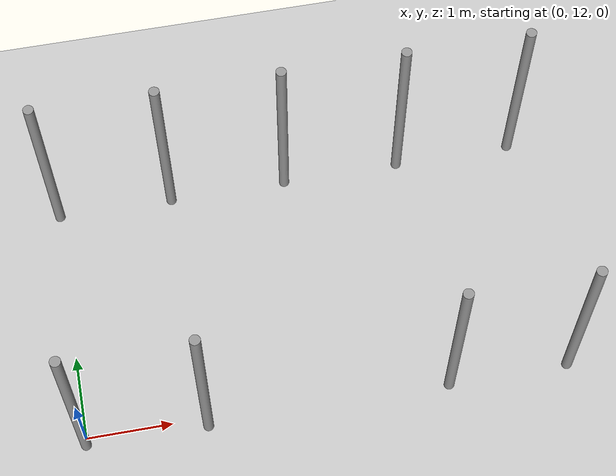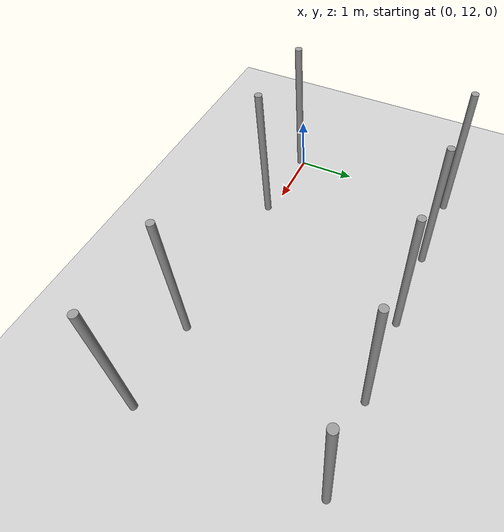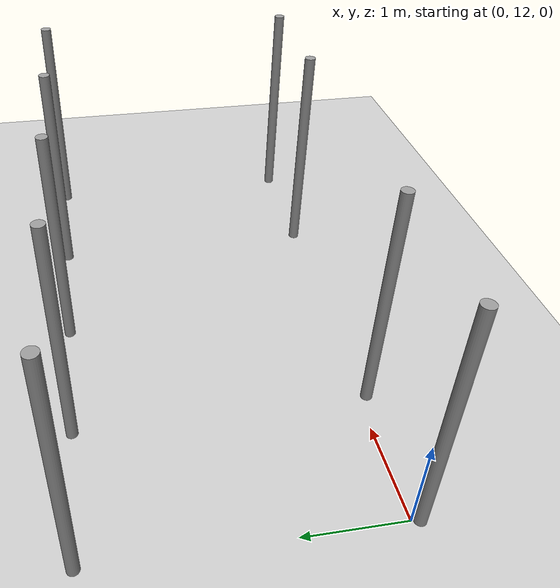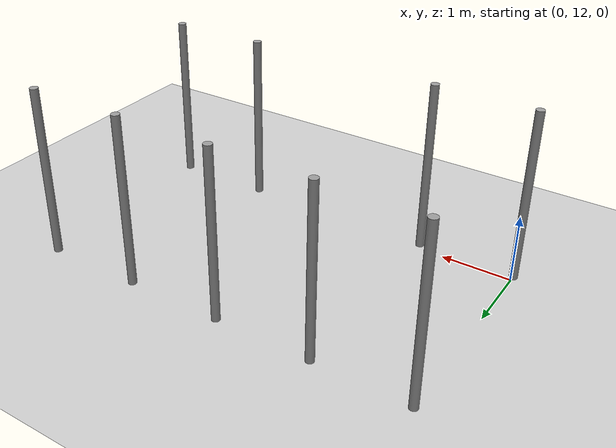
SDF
<sdf version="1.6">
 <world name="default">
  <model name="ground_plane">
   <static>1</static>
   <link name="link">
    <collision name="collision">
     <geometry><plane><normal>0 0 1</normal><size>100 100</size></plane></geometry>
     <surface><friction><ode><mu>100</mu><mu2>50</mu2></ode></friction></surface>
    </collision>
    <visual name="visual">
     <cast_shadows>0</cast_shadows>
     <geometry><plane><normal>0 0 1</normal><size>100 100</size></plane></geometry>
     <material>
      <script><uri>file://media/materials/scripts/gazebo.material</uri><name>Gazebo/Grey</name></script>
     </material>
    </visual>
   </link>
  </model>
  <model name="pole_1">
   <link name="link_0">
    <inertial>
     <mass>0.0364582</mass>
     <inertia>
      <ixx>0.00312124</ixx>
      <ixy>0</ixy>
      <ixz>0</ixz>
      <iyy>0.00312124</iyy>
      <iyz>0</iyz>
      <izz>0.00016615</izz>
     </inertia>
    </inertial>
    <visual name="visual">
     <geometry><cylinder><radius>0.06</radius><length>2.5</length></cylinder></geometry>
     <material>
      <lighting>1</lighting>
      <script><uri>file://media/materials/scripts/gazebo.material</uri><name>Gazebo/Grey</name></script>
      <ambient>0.3 0.3 0.3 1</ambient>
      <diffuse>0.7 0.7 0.7 1</diffuse>
      <specular>0.01 0.01 0.01 1</specular>
      <emissive>0 0 0 1</emissive>
      <shader type="vertex"><normal_map>__default__</normal_map></shader>
     </material>
    </visual>
    <collision name="collision">
     <geometry><cylinder><radius>0.06</radius><length>2.5</length></cylinder></geometry>
     <surface>
      <friction>
       <ode><mu>1</mu><mu2>1</mu2><fdir1>0 0 0</fdir1><slip1>0</slip1><slip2>0</slip2></ode>
       <torsional>
        <coefficient>1</coefficient>
        <patch_radius>0</patch_radius>
        <surface_radius>0</surface_radius>
        <use_patch_radius>1</use_patch_radius>
        <ode><slip>0</slip></ode>
       </torsional>
      </friction>
      <bounce><restitution_coefficient>0</restitution_coefficient><threshold>1e+06</threshold></bounce>
      <contact>
       <collide_without_contact>0</collide_without_contact>
       <collide_without_contact_bitmask>1</collide_without_contact_bitmask>
       <collide_bitmask>1</collide_bitmask>
       <ode>
        <soft_cfm>0</soft_cfm>
        <soft_erp>0.2</soft_erp>
        <kp>1e+13</kp>
        <kd>1</kd>
        <max_vel>0.01</max_vel>
        <min_depth>0</min_depth>
       </ode>
       <bullet>
        <split_impulse>1</split_impulse>
        <split_impulse_penetration_threshold>-0.01</split_impulse_penetration_threshold>
        <soft_cfm>0</soft_cfm>
        <soft_erp>0.2</soft_erp>
        <kp>1e+13</kp>
        <kd>1</kd>
       </bullet>
      </contact>
     </surface>
    </collision>
   </link>
   <static>0</static>
   <pose>-0.00812 11.9213 1.25 -1e-06 1e-06 -0.01754</pose>
  </model>
  <model name="pole_2">
   <link name="link_0">
    <inertial>
     <mass>0.0364582</mass>
     <inertia>
      <ixx>0.00312124</ixx>
      <ixy>0</ixy>
      <ixz>0</ixz>
      <iyy>0.00312124</iyy>
      <iyz>0</iyz>
      <izz>0.00016615</izz>
     </inertia>
    </inertial>
    <visual name="visual">
     <geometry><cylinder><radius>0.06</radius><length>2.5</length></cylinder></geometry>
     <material>
      <lighting>1</lighting>
      <script><uri>file://media/materials/scripts/gazebo.material</uri><name>Gazebo/Grey</name></script>
      <ambient>0.3 0.3 0.3 1</ambient>
      <diffuse>0.7 0.7 0.7 1</diffuse>
      <specular>0.01 0.01 0.01 1</specular>
      <emissive>0 0 0 1</emissive>
      <shader type="vertex"><normal_map>__default__</normal_map></shader>
     </material>
    </visual>
    <collision name="collision">
     <geometry><cylinder><radius>0.06</radius><length>2.5</length></cylinder></geometry>
     <surface>
      <friction>
       <ode><mu>1</mu><mu2>1</mu2><fdir1>0 0 0</fdir1><slip1>0</slip1><slip2>0</slip2></ode>
       <torsional>
        <coefficient>1</coefficient>
        <patch_radius>0</patch_radius>
        <surface_radius>0</surface_radius>
        <use_patch_radius>1</use_patch_radius>
        <ode><slip>0</slip></ode>
       </torsional>
      </friction>
      <bounce><restitution_coefficient>0</restitution_coefficient><threshold>1e+06</threshold></bounce>
      <contact>
       <collide_without_contact>0</collide_without_contact>
       <collide_without_contact_bitmask>1</collide_without_contact_bitmask>
       <collide_bitmask>1</collide_bitmask>
       <ode>
        <soft_cfm>0</soft_cfm>
        <soft_erp>0.2</soft_erp>
        <kp>1e+13</kp>
        <kd>1</kd>
        <max_vel>0.01</max_vel>
        <min_depth>0</min_depth>
       </ode>
       <bullet>
        <split_impulse>1</split_impulse>
        <split_impulse_penetration_threshold>-0.01</split_impulse_penetration_threshold>
        <soft_cfm>0</soft_cfm>
        <soft_erp>0.2</soft_erp>
        <kp>1e+13</kp>
        <kd>1</kd>
       </bullet>
      </contact>
     </surface>
    </collision>
   </link>
   <static>0</static>
   <pose>0.027539 14.8942 1.25 0 2e-06 0.220315</pose>
  </model>
  <model name="pole_20">
   <link name="link_0">
    <inertial>
     <mass>0.0364582</mass>
     <inertia>
      <ixx>0.00312124</ixx>
      <ixy>0</ixy>
      <ixz>0</ixz>
      <iyy>0.00312124</iyy>
      <iyz>0</iyz>
      <izz>0.00016615</izz>
     </inertia>
    </inertial>
    <visual name="visual">
     <geometry><cylinder><radius>0.06</radius><length>2.5</length></cylinder></geometry>
     <material>
      <lighting>1</lighting>
      <script><uri>file://media/materials/scripts/gazebo.material</uri><name>Gazebo/Grey</name></script>
      <ambient>0.3 0.3 0.3 1</ambient>
      <diffuse>0.7 0.7 0.7 1</diffuse>
      <specular>0.01 0.01 0.01 1</specular>
      <emissive>0 0 0 1</emissive>
      <shader type="vertex"><normal_map>__default__</normal_map></shader>
     </material>
    </visual>
    <collision name="collision">
     <geometry><cylinder><radius>0.06</radius><length>2.5</length></cylinder></geometry>
     <surface>
      <friction>
       <ode><mu>1</mu><mu2>1</mu2><fdir1>0 0 0</fdir1><slip1>0</slip1><slip2>0</slip2></ode>
       <torsional>
        <coefficient>1</coefficient>
        <patch_radius>0</patch_radius>
        <surface_radius>0</surface_radius>
        <use_patch_radius>1</use_patch_radius>
        <ode><slip>0</slip></ode>
       </torsional>
      </friction>
      <bounce><restitution_coefficient>0</restitution_coefficient><threshold>1e+06</threshold></bounce>
      <contact>
       <collide_without_contact>0</collide_without_contact>
       <collide_without_contact_bitmask>1</collide_without_contact_bitmask>
       <collide_bitmask>1</collide_bitmask>
       <ode>
        <soft_cfm>0</soft_cfm>
        <soft_erp>0.2</soft_erp>
        <kp>1e+13</kp>
        <kd>1</kd>
        <max_vel>0.01</max_vel>
        <min_depth>0</min_depth>
       </ode>
       <bullet>
        <split_impulse>1</split_impulse>
        <split_impulse_penetration_threshold>-0.01</split_impulse_penetration_threshold>
        <soft_cfm>0</soft_cfm>
        <soft_erp>0.2</soft_erp>
        <kp>1e+13</kp>
        <kd>1</kd>
       </bullet>
      </contact>
     </surface>
    </collision>
   </link>
   <static>0</static>
   <pose>1.39578 11.9006 1.24999 0 1e-06 -0.005247</pose>
  </model>
  <model name="pole_22">
   <link name="link_0">
    <inertial>
     <mass>0.0364582</mass>
     <inertia>
      <ixx>0.00312124</ixx>
      <ixy>0</ixy>
      <ixz>0</ixz>
      <iyy>0.00312124</iyy>
      <iyz>0</iyz>
      <izz>0.00016615</izz>
     </inertia>
    </inertial>
    <visual name="visual">
     <geometry><cylinder><radius>0.06</radius><length>2.5</length></cylinder></geometry>
     <material>
      <lighting>1</lighting>
      <script><uri>file://media/materials/scripts/gazebo.material</uri><name>Gazebo/Grey</name></script>
      <ambient>0.3 0.3 0.3 1</ambient>
      <diffuse>0.7 0.7 0.7 1</diffuse>
      <specular>0.01 0.01 0.01 1</specular>
      <emissive>0 0 0 1</emissive>
      <shader type="vertex"><normal_map>__default__</normal_map></shader>
     </material>
    </visual>
    <collision name="collision">
     <geometry><cylinder><radius>0.06</radius><length>2.5</length></cylinder></geometry>
     <surface>
      <friction>
       <ode><mu>1</mu><mu2>1</mu2><fdir1>0 0 0</fdir1><slip1>0</slip1><slip2>0</slip2></ode>
       <torsional>
        <coefficient>1</coefficient>
        <patch_radius>0</patch_radius>
        <surface_radius>0</surface_radius>
        <use_patch_radius>1</use_patch_radius>
        <ode><slip>0</slip></ode>
       </torsional>
      </friction>
      <bounce><restitution_coefficient>0</restitution_coefficient><threshold>1e+06</threshold></bounce>
      <contact>
       <collide_without_contact>0</collide_without_contact>
       <collide_without_contact_bitmask>1</collide_without_contact_bitmask>
       <collide_bitmask>1</collide_bitmask>
       <ode>
        <soft_cfm>0</soft_cfm>
        <soft_erp>0.2</soft_erp>
        <kp>1e+13</kp>
        <kd>1</kd>
        <max_vel>0.01</max_vel>
        <min_depth>0</min_depth>
       </ode>
       <bullet>
        <split_impulse>1</split_impulse>
        <split_impulse_penetration_threshold>-0.01</split_impulse_penetration_threshold>
        <soft_cfm>0</soft_cfm>
        <soft_erp>0.2</soft_erp>
        <kp>1e+13</kp>
        <kd>1</kd>
       </bullet>
      </contact>
     </surface>
    </collision>
   </link>
   <static>0</static>
   <pose>4.21204 11.9003 1.24999 0 1e-06 -0.002747</pose>
  </model>
  <model name="pole_23">
   <link name="link_0">
    <inertial>
     <mass>0.0364582</mass>
     <inertia>
      <ixx>0.00312124</ixx>
      <ixy>0</ixy>
      <ixz>0</ixz>
      <iyy>0.00312124</iyy>
      <iyz>0</iyz>
      <izz>0.00016615</izz>
     </inertia>
    </inertial>
    <visual name="visual">
     <geometry><cylinder><radius>0.06</radius><length>2.5</length></cylinder></geometry>
     <material>
      <lighting>1</lighting>
      <script><uri>file://media/materials/scripts/gazebo.material</uri><name>Gazebo/Grey</name></script>
      <ambient>0.3 0.3 0.3 1</ambient>
      <diffuse>0.7 0.7 0.7 1</diffuse>
      <specular>0.01 0.01 0.01 1</specular>
      <emissive>0 0 0 1</emissive>
      <shader type="vertex"><normal_map>__default__</normal_map></shader>
     </material>
    </visual>
    <collision name="collision">
     <geometry><cylinder><radius>0.06</radius><length>2.5</length></cylinder></geometry>
     <surface>
      <friction>
       <ode><mu>1</mu><mu2>1</mu2><fdir1>0 0 0</fdir1><slip1>0</slip1><slip2>0</slip2></ode>
       <torsional>
        <coefficient>1</coefficient>
        <patch_radius>0</patch_radius>
        <surface_radius>0</surface_radius>
        <use_patch_radius>1</use_patch_radius>
        <ode><slip>0</slip></ode>
       </torsional>
      </friction>
      <bounce><restitution_coefficient>0</restitution_coefficient><threshold>1e+06</threshold></bounce>
      <contact>
       <collide_without_contact>0</collide_without_contact>
       <collide_without_contact_bitmask>1</collide_without_contact_bitmask>
       <collide_bitmask>1</collide_bitmask>
       <ode>
        <soft_cfm>0</soft_cfm>
        <soft_erp>0.2</soft_erp>
        <kp>1e+13</kp>
        <kd>1</kd>
        <max_vel>0.01</max_vel>
        <min_depth>0</min_depth>
       </ode>
       <bullet>
        <split_impulse>1</split_impulse>
        <split_impulse_penetration_threshold>-0.01</split_impulse_penetration_threshold>
        <soft_cfm>0</soft_cfm>
        <soft_erp>0.2</soft_erp>
        <kp>1e+13</kp>
        <kd>1</kd>
       </bullet>
      </contact>
     </surface>
    </collision>
   </link>
   <static>0</static>
   <pose>5.61607 11.9004 1.25 -1e-06 -0 -0.005032</pose>
  </model>
  <model name="pole_25">
   <link name="link_0">
    <inertial>
     <mass>0.0364582</mass>
     <inertia>
      <ixx>0.00312124</ixx>
      <ixy>0</ixy>
      <ixz>0</ixz>
      <iyy>0.00312124</iyy>
      <iyz>0</iyz>
      <izz>0.00016615</izz>
     </inertia>
    </inertial>
    <visual name="visual">
     <geometry><cylinder><radius>0.06</radius><length>2.5</length></cylinder></geometry>
     <material>
      <lighting>1</lighting>
      <script><uri>file://media/materials/scripts/gazebo.material</uri><name>Gazebo/Grey</name></script>
      <ambient>0.3 0.3 0.3 1</ambient>
      <diffuse>0.7 0.7 0.7 1</diffuse>
      <specular>0.01 0.01 0.01 1</specular>
      <emissive>0 0 0 1</emissive>
      <shader type="vertex"><normal_map>__default__</normal_map></shader>
     </material>
    </visual>
    <collision name="collision">
     <geometry><cylinder><radius>0.06</radius><length>2.5</length></cylinder></geometry>
     <surface>
      <friction>
       <ode><mu>1</mu><mu2>1</mu2><fdir1>0 0 0</fdir1><slip1>0</slip1><slip2>0</slip2></ode>
       <torsional>
        <coefficient>1</coefficient>
        <patch_radius>0</patch_radius>
        <surface_radius>0</surface_radius>
        <use_patch_radius>1</use_patch_radius>
        <ode><slip>0</slip></ode>
       </torsional>
      </friction>
      <bounce><restitution_coefficient>0</restitution_coefficient><threshold>1e+06</threshold></bounce>
      <contact>
       <collide_without_contact>0</collide_without_contact>
       <collide_without_contact_bitmask>1</collide_without_contact_bitmask>
       <collide_bitmask>1</collide_bitmask>
       <ode>
        <soft_cfm>0</soft_cfm>
        <soft_erp>0.2</soft_erp>
        <kp>1e+13</kp>
        <kd>1</kd>
        <max_vel>0.01</max_vel>
        <min_depth>0</min_depth>
       </ode>
       <bullet>
        <split_impulse>1</split_impulse>
        <split_impulse_penetration_threshold>-0.01</split_impulse_penetration_threshold>
        <soft_cfm>0</soft_cfm>
        <soft_erp>0.2</soft_erp>
        <kp>1e+13</kp>
        <kd>1</kd>
       </bullet>
      </contact>
     </surface>
    </collision>
   </link>
   <static>0</static>
   <pose>1.39581 14.8801 1.24999 -1e-06 -2e-06 -0.002592</pose>
  </model>
  <model name="pole_26">
   <link name="link_0">
    <inertial>
     <mass>0.0364582</mass>
     <inertia>
      <ixx>0.00312124</ixx>
      <ixy>0</ixy>
      <ixz>0</ixz>
      <iyy>0.00312124</iyy>
      <iyz>0</iyz>
      <izz>0.00016615</izz>
     </inertia>
    </inertial>
    <visual name="visual">
     <geometry><cylinder><radius>0.06</radius><length>2.5</length></cylinder></geometry>
     <material>
      <lighting>1</lighting>
      <script><uri>file://media/materials/scripts/gazebo.material</uri><name>Gazebo/Grey</name></script>
      <ambient>0.3 0.3 0.3 1</ambient>
      <diffuse>0.7 0.7 0.7 1</diffuse>
      <specular>0.01 0.01 0.01 1</specular>
      <emissive>0 0 0 1</emissive>
      <shader type="vertex"><normal_map>__default__</normal_map></shader>
     </material>
    </visual>
    <collision name="collision">
     <geometry><cylinder><radius>0.06</radius><length>2.5</length></cylinder></geometry>
     <surface>
      <friction>
       <ode><mu>1</mu><mu2>1</mu2><fdir1>0 0 0</fdir1><slip1>0</slip1><slip2>0</slip2></ode>
       <torsional>
        <coefficient>1</coefficient>
        <patch_radius>0</patch_radius>
        <surface_radius>0</surface_radius>
        <use_patch_radius>1</use_patch_radius>
        <ode><slip>0</slip></ode>
       </torsional>
      </friction>
      <bounce><restitution_coefficient>0</restitution_coefficient><threshold>1e+06</threshold></bounce>
      <contact>
       <collide_without_contact>0</collide_without_contact>
       <collide_without_contact_bitmask>1</collide_without_contact_bitmask>
       <collide_bitmask>1</collide_bitmask>
       <ode>
        <soft_cfm>0</soft_cfm>
        <soft_erp>0.2</soft_erp>
        <kp>1e+13</kp>
        <kd>1</kd>
        <max_vel>0.01</max_vel>
        <min_depth>0</min_depth>
       </ode>
       <bullet>
        <split_impulse>1</split_impulse>
        <split_impulse_penetration_threshold>-0.01</split_impulse_penetration_threshold>
        <soft_cfm>0</soft_cfm>
        <soft_erp>0.2</soft_erp>
        <kp>1e+13</kp>
        <kd>1</kd>
       </bullet>
      </contact>
     </surface>
    </collision>
   </link>
   <static>0</static>
   <pose>2.79976 14.88 1.24999 -1e-06 1e-06 -0.003185</pose>
  </model>
  <model name="pole_27">
   <link name="link_0">
    <inertial>
     <mass>0.0364582</mass>
     <inertia>
      <ixx>0.00312124</ixx>
      <ixy>0</ixy>
      <ixz>0</ixz>
      <iyy>0.00312124</iyy>
      <iyz>0</iyz>
      <izz>0.00016615</izz>
     </inertia>
    </inertial>
    <visual name="visual">
     <geometry><cylinder><radius>0.06</radius><length>2.5</length></cylinder></geometry>
     <material>
      <lighting>1</lighting>
      <script><uri>file://media/materials/scripts/gazebo.material</uri><name>Gazebo/Grey</name></script>
      <ambient>0.3 0.3 0.3 1</ambient>
      <diffuse>0.7 0.7 0.7 1</diffuse>
      <specular>0.01 0.01 0.01 1</specular>
      <emissive>0 0 0 1</emissive>
      <shader type="vertex"><normal_map>__default__</normal_map></shader>
     </material>
    </visual>
    <collision name="collision">
     <geometry><cylinder><radius>0.06</radius><length>2.5</length></cylinder></geometry>
     <surface>
      <friction>
       <ode><mu>1</mu><mu2>1</mu2><fdir1>0 0 0</fdir1><slip1>0</slip1><slip2>0</slip2></ode>
       <torsional>
        <coefficient>1</coefficient>
        <patch_radius>0</patch_radius>
        <surface_radius>0</surface_radius>
        <use_patch_radius>1</use_patch_radius>
        <ode><slip>0</slip></ode>
       </torsional>
      </friction>
      <bounce><restitution_coefficient>0</restitution_coefficient><threshold>1e+06</threshold></bounce>
      <contact>
       <collide_without_contact>0</collide_without_contact>
       <collide_without_contact_bitmask>1</collide_without_contact_bitmask>
       <collide_bitmask>1</collide_bitmask>
       <ode>
        <soft_cfm>0</soft_cfm>
        <soft_erp>0.2</soft_erp>
        <kp>1e+13</kp>
        <kd>1</kd>
        <max_vel>0.01</max_vel>
        <min_depth>0</min_depth>
       </ode>
       <bullet>
        <split_impulse>1</split_impulse>
        <split_impulse_penetration_threshold>-0.01</split_impulse_penetration_threshold>
        <soft_cfm>0</soft_cfm>
        <soft_erp>0.2</soft_erp>
        <kp>1e+13</kp>
        <kd>1</kd>
       </bullet>
      </contact>
     </surface>
    </collision>
   </link>
   <static>0</static>
   <pose>4.20726 14.8801 1.24999 -2.8e-05 -0.00029 0.007635</pose>
  </model>
  <model name="pole_28">
   <link name="link_0">
    <inertial>
     <mass>0.0364582</mass>
     <inertia>
      <ixx>0.00312124</ixx>
      <ixy>0</ixy>
      <ixz>0</ixz>
      <iyy>0.00312124</iyy>
      <iyz>0</iyz>
      <izz>0.00016615</izz>
     </inertia>
    </inertial>
    <visual name="visual">
     <geometry><cylinder><radius>0.06</radius><length>2.5</length></cylinder></geometry>
     <material>
      <lighting>1</lighting>
      <script><uri>file://media/materials/scripts/gazebo.material</uri><name>Gazebo/Grey</name></script>
      <ambient>0.3 0.3 0.3 1</ambient>
      <diffuse>0.7 0.7 0.7 1</diffuse>
      <specular>0.01 0.01 0.01 1</specular>
      <emissive>0 0 0 1</emissive>
      <shader type="vertex"><normal_map>__default__</normal_map></shader>
     </material>
    </visual>
    <collision name="collision">
     <geometry><cylinder><radius>0.06</radius><length>2.5</length></cylinder></geometry>
     <surface>
      <friction>
       <ode><mu>1</mu><mu2>1</mu2><fdir1>0 0 0</fdir1><slip1>0</slip1><slip2>0</slip2></ode>
       <torsional>
        <coefficient>1</coefficient>
        <patch_radius>0</patch_radius>
        <surface_radius>0</surface_radius>
        <use_patch_radius>1</use_patch_radius>
        <ode><slip>0</slip></ode>
       </torsional>
      </friction>
      <bounce><restitution_coefficient>0</restitution_coefficient><threshold>1e+06</threshold></bounce>
      <contact>
       <collide_without_contact>0</collide_without_contact>
       <collide_without_contact_bitmask>1</collide_without_contact_bitmask>
       <collide_bitmask>1</collide_bitmask>
       <ode>
        <soft_cfm>0</soft_cfm>
        <soft_erp>0.2</soft_erp>
        <kp>1e+13</kp>
        <kd>1</kd>
        <max_vel>0.01</max_vel>
        <min_depth>0</min_depth>
       </ode>
       <bullet>
        <split_impulse>1</split_impulse>
        <split_impulse_penetration_threshold>-0.01</split_impulse_penetration_threshold>
        <soft_cfm>0</soft_cfm>
        <soft_erp>0.2</soft_erp>
        <kp>1e+13</kp>
        <kd>1</kd>
       </bullet>
      </contact>
     </surface>
    </collision>
   </link>
   <static>0</static>
   <pose>5.62 14.88 1.24999 -1e-06 -0 0.000374</pose>
  </model>
 </world>
</sdf>
